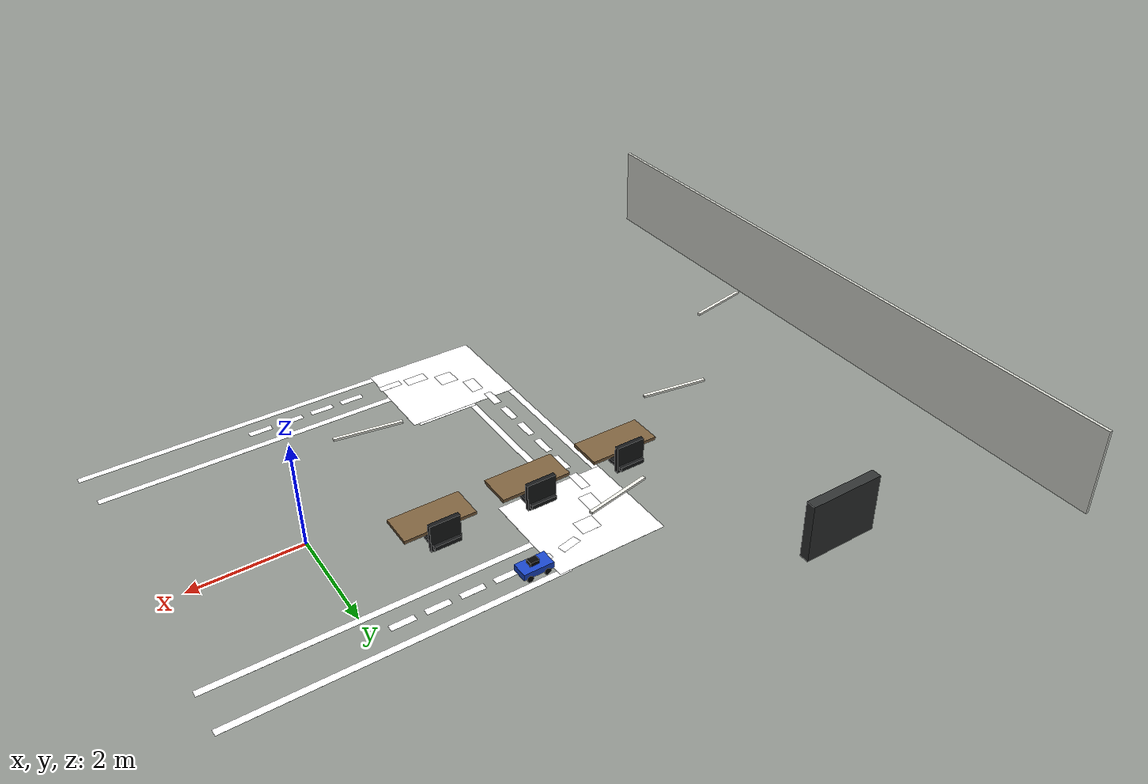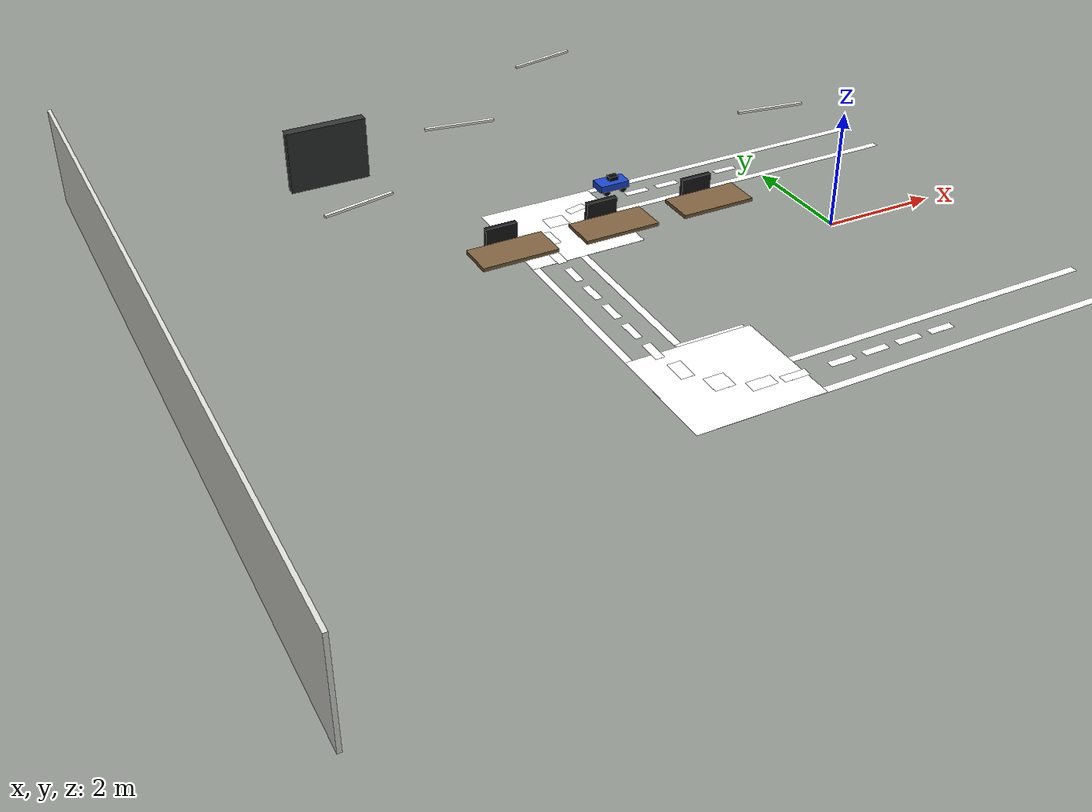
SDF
<sdf version="1.10">
 <world name="kookmin_xycar_track">
  <model name="white_line_cad_01">
   <static>true</static>
   <pose>-5.0048627853393555 -0.46876698732376099 0.014000000432133675 0 0 0</pose>
   <link name="white_line_cad_01_surface">
    <visual name="visual">
     <cast_shadows>false</cast_shadows>
     <geometry><plane><normal>0 0 1</normal><size>0.13 3.1200000000000001</size></plane></geometry>
     <material>
      <ambient>1 1 1 1</ambient>
      <diffuse>1 1 1 1</diffuse>
      <emissive>0.949000001 0.949000001 0.925499976 1</emissive>
      <pbr>
       <metal>
        <albedo_map>file://media/materials/textures/kookmin_white_line_cad_01.png</albedo_map>
        <roughness>1</roughness>
        <metalness>0</metalness>
       </metal>
      </pbr>
     </material>
    </visual>
    <inertial>
     <mass>1</mass>
     <inertia><ixx>1</ixx><ixy>0</ixy><ixz>0</ixz><iyy>1</iyy><iyz>0</iyz><izz>1</izz></inertia>
    </inertial>
   </link>
  </model>
  <model name="white_line_cad_02">
   <static>true</static>
   <pose>-4.1487832069396973 -0.43999999761581421 0.014200000092387199 0 0 0</pose>
   <link name="white_line_cad_02_surface">
    <visual name="visual">
     <cast_shadows>false</cast_shadows>
     <geometry><plane><normal>0 0 1</normal><size>0.13 3.1200000000000001</size></plane></geometry>
     <material>
      <ambient>1 1 1 1</ambient>
      <diffuse>1 1 1 1</diffuse>
      <emissive>0.949000001 0.949000001 0.925499976 1</emissive>
      <pbr>
       <metal>
        <albedo_map>file://media/materials/textures/kookmin_white_line_cad_02.png</albedo_map>
        <roughness>1</roughness>
        <metalness>0</metalness>
       </metal>
      </pbr>
     </material>
    </visual>
    <inertial>
     <mass>1</mass>
     <inertia><ixx>1</ixx><ixy>0</ixy><ixz>0</ixz><iyy>1</iyy><iyz>0</iyz><izz>1</izz></inertia>
    </inertial>
   </link>
  </model>
  <model name="white_line_cad_03">
   <static>true</static>
   <pose>-0.22653511166572571 -3.741569995880127 0.014399999752640724 0 0 0</pose>
   <link name="white_line_cad_03_surface">
    <visual name="visual">
     <cast_shadows>false</cast_shadows>
     <geometry><plane><normal>0 0 1</normal><size>5.7400000000000002 0.13</size></plane></geometry>
     <material>
      <ambient>1 1 1 1</ambient>
      <diffuse>1 1 1 1</diffuse>
      <emissive>0.949000001 0.949000001 0.925499976 1</emissive>
      <pbr>
       <metal>
        <albedo_map>file://media/materials/textures/kookmin_white_line_cad_03.png</albedo_map>
        <roughness>1</roughness>
        <metalness>0</metalness>
       </metal>
      </pbr>
     </material>
    </visual>
    <inertial>
     <mass>1</mass>
     <inertia><ixx>1</ixx><ixy>0</ixy><ixz>0</ixz><iyy>1</iyy><iyz>0</iyz><izz>1</izz></inertia>
    </inertial>
   </link>
  </model>
  <model name="white_line_cad_04">
   <static>true</static>
   <pose>-0.34999999999999998 -2.9350000000000001 0.0146 0 0 0</pose>
   <link name="white_line_cad_04_surface">
    <visual name="visual">
     <cast_shadows>false</cast_shadows>
     <geometry><plane><normal>0 0 1</normal><size>5.7400000000000002 0.13</size></plane></geometry>
     <material>
      <ambient>1 1 1 1</ambient>
      <diffuse>1 1 1 1</diffuse>
      <emissive>0.949000001 0.949000001 0.925499976 1</emissive>
      <pbr>
       <metal>
        <albedo_map>file://media/materials/textures/kookmin_white_line_cad_04.png</albedo_map>
        <roughness>1</roughness>
        <metalness>0</metalness>
       </metal>
      </pbr>
     </material>
    </visual>
    <inertial>
     <mass>1</mass>
     <inertia><ixx>1</ixx><ixy>0</ixy><ixz>0</ixz><iyy>1</iyy><iyz>0</iyz><izz>1</izz></inertia>
    </inertial>
   </link>
  </model>
  <model name="white_line_cad_05">
   <static>true</static>
   <pose>-0.34999999999999998 2.0550000000000002 0.014800000000000001 0 0 0</pose>
   <link name="white_line_cad_05_surface">
    <visual name="visual">
     <cast_shadows>false</cast_shadows>
     <geometry><plane><normal>0 0 1</normal><size>5.7800000000000002 0.13</size></plane></geometry>
     <material>
      <ambient>1 1 1 1</ambient>
      <diffuse>1 1 1 1</diffuse>
      <emissive>0.949000001 0.949000001 0.925499976 1</emissive>
      <pbr>
       <metal>
        <albedo_map>file://media/materials/textures/kookmin_white_line_cad_05.png</albedo_map>
        <roughness>1</roughness>
        <metalness>0</metalness>
       </metal>
      </pbr>
     </material>
    </visual>
    <inertial>
     <mass>1</mass>
     <inertia><ixx>1</ixx><ixy>0</ixy><ixz>0</ixz><iyy>1</iyy><iyz>0</iyz><izz>1</izz></inertia>
    </inertial>
   </link>
  </model>
  <model name="white_line_cad_06">
   <static>true</static>
   <pose>-0.34999999999999998 2.8650000000000002 0.014999999999999999 0 0 0</pose>
   <link name="white_line_cad_06_surface">
    <visual name="visual">
     <cast_shadows>false</cast_shadows>
     <geometry><plane><normal>0 0 1</normal><size>5.7800000000000002 0.13</size></plane></geometry>
     <material>
      <ambient>1 1 1 1</ambient>
      <diffuse>1 1 1 1</diffuse>
      <emissive>0.949000001 0.949000001 0.925499976 1</emissive>
      <pbr>
       <metal>
        <albedo_map>file://media/materials/textures/kookmin_white_line_cad_06.png</albedo_map>
        <roughness>1</roughness>
        <metalness>0</metalness>
       </metal>
      </pbr>
     </material>
    </visual>
    <inertial>
     <mass>1</mass>
     <inertia><ixx>1</ixx><ixy>0</ixy><ixz>0</ixz><iyy>1</iyy><iyz>0</iyz><izz>1</izz></inertia>
    </inertial>
   </link>
  </model>
  <model name="white_line_cad_18">
   <static>true</static>
   <pose>-3.6585278511047363 1.5645300149917603 0.017400000244379044 0 0 0</pose>
   <link name="white_line_cad_18_surface">
    <visual name="visual">
     <cast_shadows>false</cast_shadows>
     <geometry><plane><normal>0 0 1</normal><size>1.1399999999999999 1.1299999999999999</size></plane></geometry>
     <material>
      <ambient>1 1 1 1</ambient>
      <diffuse>1 1 1 1</diffuse>
      <emissive>0.949000001 0.949000001 0.925499976 1</emissive>
      <pbr>
       <metal>
        <albedo_map>file://media/materials/textures/kookmin_white_line_cad_18.png</albedo_map>
        <roughness>1</roughness>
        <metalness>0</metalness>
       </metal>
      </pbr>
     </material>
    </visual>
    <inertial>
     <mass>1</mass>
     <inertia><ixx>1</ixx><ixy>0</ixy><ixz>0</ixz><iyy>1</iyy><iyz>0</iyz><izz>1</izz></inertia>
    </inertial>
   </link>
  </model>
  <model name="white_line_cad_19">
   <static>true</static>
   <pose>-4.0487060546875 1.9379400014877319 0.017599999904632568 0 0 0</pose>
   <link name="white_line_cad_19_surface">
    <visual name="visual">
     <cast_shadows>false</cast_shadows>
     <geometry><plane><normal>0 0 1</normal><size>2.04 1.9299999999999999</size></plane></geometry>
     <material>
      <ambient>1 1 1 1</ambient>
      <diffuse>1 1 1 1</diffuse>
      <emissive>0.949000001 0.949000001 0.925499976 1</emissive>
      <pbr>
       <metal>
        <albedo_map>file://media/materials/textures/kookmin_white_line_cad_19.png</albedo_map>
        <roughness>1</roughness>
        <metalness>0</metalness>
       </metal>
      </pbr>
     </material>
    </visual>
    <inertial>
     <mass>1</mass>
     <inertia><ixx>1</ixx><ixy>0</ixy><ixz>0</ixz><iyy>1</iyy><iyz>0</iyz><izz>1</izz></inertia>
    </inertial>
   </link>
  </model>
  <model name="white_line_cad_20">
   <static>true</static>
   <pose>-3.6142799854278564 -2.4223885536193848 0.017799999564886093 0 0 0</pose>
   <link name="white_line_cad_20_surface">
    <visual name="visual">
     <cast_shadows>false</cast_shadows>
     <geometry><plane><normal>0 0 1</normal><size>1.1699999999999999 1.1299999999999999</size></plane></geometry>
     <material>
      <ambient>1 1 1 1</ambient>
      <diffuse>1 1 1 1</diffuse>
      <emissive>0.949000001 0.949000001 0.925499976 1</emissive>
      <pbr>
       <metal>
        <albedo_map>file://media/materials/textures/kookmin_white_line_cad_20.png</albedo_map>
        <roughness>1</roughness>
        <metalness>0</metalness>
       </metal>
      </pbr>
     </material>
    </visual>
    <inertial>
     <mass>1</mass>
     <inertia><ixx>1</ixx><ixy>0</ixy><ixz>0</ixz><iyy>1</iyy><iyz>0</iyz><izz>1</izz></inertia>
    </inertial>
   </link>
  </model>
  <model name="white_line_cad_21">
   <static>true</static>
   <pose>-3.9988181591033936 -2.8690700531005859 0.017999999225139618 0 0 0</pose>
   <link name="white_line_cad_21_surface">
    <visual name="visual">
     <cast_shadows>false</cast_shadows>
     <geometry><plane><normal>0 0 1</normal><size>2.1400000000000001 1.8999999999999999</size></plane></geometry>
     <material>
      <ambient>1 1 1 1</ambient>
      <diffuse>1 1 1 1</diffuse>
      <emissive>0.949000001 0.949000001 0.925499976 1</emissive>
      <pbr>
       <metal>
        <albedo_map>file://media/materials/textures/kookmin_white_line_cad_21.png</albedo_map>
        <roughness>1</roughness>
        <metalness>0</metalness>
       </metal>
      </pbr>
     </material>
    </visual>
    <inertial>
     <mass>1</mass>
     <inertia><ixx>1</ixx><ixy>0</ixy><ixz>0</ixz><iyy>1</iyy><iyz>0</iyz><izz>1</izz></inertia>
    </inertial>
   </link>
  </model>
  <model name="yellow_centerline_dash_001">
   <static>true</static>
   <pose>-2.3050000000000002 2.4649999999999999 0.026499999999999999 0 0 0</pose>
   <link name="yellow_centerline_dash_001_surface">
    <visual name="visual">
     <cast_shadows>false</cast_shadows>
     <geometry><plane><normal>0 0 1</normal><size>0.42999999999999999 0.13</size></plane></geometry>
     <material>
      <ambient>1 1 1 1</ambient>
      <diffuse>1 1 1 1</diffuse>
      <emissive>1 0.768599987 0.0471000001 1</emissive>
      <pbr>
       <metal>
        <albedo_map>file://media/materials/textures/kookmin_yellow_centerline_dash_001.png</albedo_map>
        <roughness>1</roughness>
        <metalness>0</metalness>
       </metal>
      </pbr>
     </material>
    </visual>
    <inertial>
     <mass>1</mass>
     <inertia><ixx>1</ixx><ixy>0</ixy><ixz>0</ixz><iyy>1</iyy><iyz>0</iyz><izz>1</izz></inertia>
    </inertial>
   </link>
  </model>
  <model name="yellow_centerline_dash_002">
   <static>true</static>
   <pose>-1.7050000000000001 2.4649999999999999 0.026700000000000002 0 0 0</pose>
   <link name="yellow_centerline_dash_002_surface">
    <visual name="visual">
     <cast_shadows>false</cast_shadows>
     <geometry><plane><normal>0 0 1</normal><size>0.42999999999999999 0.13</size></plane></geometry>
     <material>
      <ambient>1 1 1 1</ambient>
      <diffuse>1 1 1 1</diffuse>
      <emissive>1 0.768599987 0.0471000001 1</emissive>
      <pbr>
       <metal>
        <albedo_map>file://media/materials/textures/kookmin_yellow_centerline_dash_002.png</albedo_map>
        <roughness>1</roughness>
        <metalness>0</metalness>
       </metal>
      </pbr>
     </material>
    </visual>
    <inertial>
     <mass>1</mass>
     <inertia><ixx>1</ixx><ixy>0</ixy><ixz>0</ixz><iyy>1</iyy><iyz>0</iyz><izz>1</izz></inertia>
    </inertial>
   </link>
  </model>
  <model name="yellow_centerline_dash_003">
   <static>true</static>
   <pose>-1.105 2.4649999999999999 0.0269 0 0 0</pose>
   <link name="yellow_centerline_dash_003_surface">
    <visual name="visual">
     <cast_shadows>false</cast_shadows>
     <geometry><plane><normal>0 0 1</normal><size>0.42999999999999999 0.13</size></plane></geometry>
     <material>
      <ambient>1 1 1 1</ambient>
      <diffuse>1 1 1 1</diffuse>
      <emissive>1 0.768599987 0.0471000001 1</emissive>
      <pbr>
       <metal>
        <albedo_map>file://media/materials/textures/kookmin_yellow_centerline_dash_003.png</albedo_map>
        <roughness>1</roughness>
        <metalness>0</metalness>
       </metal>
      </pbr>
     </material>
    </visual>
    <inertial>
     <mass>1</mass>
     <inertia><ixx>1</ixx><ixy>0</ixy><ixz>0</ixz><iyy>1</iyy><iyz>0</iyz><izz>1</izz></inertia>
    </inertial>
   </link>
  </model>
  <model name="yellow_centerline_dash_004">
   <static>true</static>
   <pose>-0.505 2.4649999999999999 0.027099999999999999 0 0 0</pose>
   <link name="yellow_centerline_dash_004_surface">
    <visual name="visual">
     <cast_shadows>false</cast_shadows>
     <geometry><plane><normal>0 0 1</normal><size>0.42999999999999999 0.13</size></plane></geometry>
     <material>
      <ambient>1 1 1 1</ambient>
      <diffuse>1 1 1 1</diffuse>
      <emissive>1 0.768599987 0.0471000001 1</emissive>
      <pbr>
       <metal>
        <albedo_map>file://media/materials/textures/kookmin_yellow_centerline_dash_004.png</albedo_map>
        <roughness>1</roughness>
        <metalness>0</metalness>
       </metal>
      </pbr>
     </material>
    </visual>
    <inertial>
     <mass>1</mass>
     <inertia><ixx>1</ixx><ixy>0</ixy><ixz>0</ixz><iyy>1</iyy><iyz>0</iyz><izz>1</izz></inertia>
    </inertial>
   </link>
  </model>
  <model name="yellow_centerline_dash_009">
   <static>true</static>
   <pose>-2.928236722946167 2.4549999237060547 0.028100000694394112 0 0 0</pose>
   <link name="yellow_centerline_dash_009_surface">
    <visual name="visual">
     <cast_shadows>false</cast_shadows>
     <geometry><plane><normal>0 0 1</normal><size>0.42999999999999999 0.13</size></plane></geometry>
     <material>
      <ambient>1 1 1 1</ambient>
      <diffuse>1 1 1 1</diffuse>
      <emissive>1 0.768599987 0.0471000001 1</emissive>
      <pbr>
       <metal>
        <albedo_map>file://media/materials/textures/kookmin_yellow_centerline_dash_009.png</albedo_map>
        <roughness>1</roughness>
        <metalness>0</metalness>
       </metal>
      </pbr>
     </material>
    </visual>
    <inertial>
     <mass>1</mass>
     <inertia><ixx>1</ixx><ixy>0</ixy><ixz>0</ixz><iyy>1</iyy><iyz>0</iyz><izz>1</izz></inertia>
    </inertial>
   </link>
  </model>
  <model name="yellow_centerline_dash_011">
   <static>true</static>
   <pose>-3.5250000953674316 2.4000000953674316 0.028500000014901161 0 0 0.22944573427692086</pose>
   <link name="yellow_centerline_dash_011_surface">
    <visual name="visual">
     <cast_shadows>false</cast_shadows>
     <geometry><plane><normal>0 0 1</normal><size>0.37 0.16</size></plane></geometry>
     <material>
      <ambient>1 1 1 1</ambient>
      <diffuse>1 1 1 1</diffuse>
      <emissive>1 0.768599987 0.0471000001 1</emissive>
      <pbr>
       <metal>
        <albedo_map>file://media/materials/textures/kookmin_yellow_centerline_dash_011.png</albedo_map>
        <roughness>1</roughness>
        <metalness>0</metalness>
       </metal>
      </pbr>
     </material>
    </visual>
    <inertial>
     <mass>1</mass>
     <inertia><ixx>1</ixx><ixy>0</ixy><ixz>0</ixz><iyy>1</iyy><iyz>0</iyz><izz>1</izz></inertia>
    </inertial>
   </link>
  </model>
  <model name="yellow_centerline_dash_013">
   <static>true</static>
   <pose>-4.0350000000000001 2.165 0.028899999999999999 0 0 0</pose>
   <link name="yellow_centerline_dash_013_surface">
    <visual name="visual">
     <cast_shadows>false</cast_shadows>
     <geometry><plane><normal>0 0 1</normal><size>0.37 0.31</size></plane></geometry>
     <material>
      <ambient>1 1 1 1</ambient>
      <diffuse>1 1 1 1</diffuse>
      <emissive>1 0.768599987 0.0471000001 1</emissive>
      <pbr>
       <metal>
        <albedo_map>file://media/materials/textures/kookmin_yellow_centerline_dash_013.png</albedo_map>
        <roughness>1</roughness>
        <metalness>0</metalness>
       </metal>
      </pbr>
     </material>
    </visual>
    <inertial>
     <mass>1</mass>
     <inertia><ixx>1</ixx><ixy>0</ixy><ixz>0</ixz><iyy>1</iyy><iyz>0</iyz><izz>1</izz></inertia>
    </inertial>
   </link>
  </model>
  <model name="yellow_centerline_dash_014">
   <static>true</static>
   <pose>-4.4100000000000001 1.71 0.029100000000000001 0 0 0</pose>
   <link name="yellow_centerline_dash_014_surface">
    <visual name="visual">
     <cast_shadows>false</cast_shadows>
     <geometry><plane><normal>0 0 1</normal><size>0.26000000000000001 0.40000000000000002</size></plane></geometry>
     <material>
      <ambient>1 1 1 1</ambient>
      <diffuse>1 1 1 1</diffuse>
      <emissive>1 0.768599987 0.0471000001 1</emissive>
      <pbr>
       <metal>
        <albedo_map>file://media/materials/textures/kookmin_yellow_centerline_dash_014.png</albedo_map>
        <roughness>1</roughness>
        <metalness>0</metalness>
       </metal>
      </pbr>
     </material>
    </visual>
    <inertial>
     <mass>1</mass>
     <inertia><ixx>1</ixx><ixy>0</ixy><ixz>0</ixz><iyy>1</iyy><iyz>0</iyz><izz>1</izz></inertia>
    </inertial>
   </link>
  </model>
  <model name="yellow_centerline_dash_016">
   <static>true</static>
   <pose>-4.5549999999999997 1.135 0.029499999999999998 0 0 0</pose>
   <link name="yellow_centerline_dash_016_surface">
    <visual name="visual">
     <cast_shadows>false</cast_shadows>
     <geometry><plane><normal>0 0 1</normal><size>0.17000000000000001 0.42999999999999999</size></plane></geometry>
     <material>
      <ambient>1 1 1 1</ambient>
      <diffuse>1 1 1 1</diffuse>
      <emissive>1 0.768599987 0.0471000001 1</emissive>
      <pbr>
       <metal>
        <albedo_map>file://media/materials/textures/kookmin_yellow_centerline_dash_016.png</albedo_map>
        <roughness>1</roughness>
        <metalness>0</metalness>
       </metal>
      </pbr>
     </material>
    </visual>
    <inertial>
     <mass>1</mass>
     <inertia><ixx>1</ixx><ixy>0</ixy><ixz>0</ixz><iyy>1</iyy><iyz>0</iyz><izz>1</izz></inertia>
    </inertial>
   </link>
  </model>
  <model name="yellow_centerline_dash_019">
   <static>true</static>
   <pose>-4.5750000000000002 0.53000000000000003 0.030099999999999998 0 0 0</pose>
   <link name="yellow_centerline_dash_019_surface">
    <visual name="visual">
     <cast_shadows>false</cast_shadows>
     <geometry><plane><normal>0 0 1</normal><size>0.13 0.41999999999999998</size></plane></geometry>
     <material>
      <ambient>1 1 1 1</ambient>
      <diffuse>1 1 1 1</diffuse>
      <emissive>1 0.768599987 0.0471000001 1</emissive>
      <pbr>
       <metal>
        <albedo_map>file://media/materials/textures/kookmin_yellow_centerline_dash_019.png</albedo_map>
        <roughness>1</roughness>
        <metalness>0</metalness>
       </metal>
      </pbr>
     </material>
    </visual>
    <inertial>
     <mass>1</mass>
     <inertia><ixx>1</ixx><ixy>0</ixy><ixz>0</ixz><iyy>1</iyy><iyz>0</iyz><izz>1</izz></inertia>
    </inertial>
   </link>
  </model>
  <model name="yellow_centerline_dash_021">
   <static>true</static>
   <pose>-4.5750000000000002 -0.070000000000000007 0.030499999999999999 0 0 0</pose>
   <link name="yellow_centerline_dash_021_surface">
    <visual name="visual">
     <cast_shadows>false</cast_shadows>
     <geometry><plane><normal>0 0 1</normal><size>0.13 0.41999999999999998</size></plane></geometry>
     <material>
      <ambient>1 1 1 1</ambient>
      <diffuse>1 1 1 1</diffuse>
      <emissive>1 0.768599987 0.0471000001 1</emissive>
      <pbr>
       <metal>
        <albedo_map>file://media/materials/textures/kookmin_yellow_centerline_dash_021.png</albedo_map>
        <roughness>1</roughness>
        <metalness>0</metalness>
       </metal>
      </pbr>
     </material>
    </visual>
    <inertial>
     <mass>1</mass>
     <inertia><ixx>1</ixx><ixy>0</ixy><ixz>0</ixz><iyy>1</iyy><iyz>0</iyz><izz>1</izz></inertia>
    </inertial>
   </link>
  </model>
  <model name="yellow_centerline_dash_023">
   <static>true</static>
   <pose>-4.5750000000000002 -0.67000000000000004 0.0309 0 0 0</pose>
   <link name="yellow_centerline_dash_023_surface">
    <visual name="visual">
     <cast_shadows>false</cast_shadows>
     <geometry><plane><normal>0 0 1</normal><size>0.13 0.41999999999999998</size></plane></geometry>
     <material>
      <ambient>1 1 1 1</ambient>
      <diffuse>1 1 1 1</diffuse>
      <emissive>1 0.768599987 0.0471000001 1</emissive>
      <pbr>
       <metal>
        <albedo_map>file://media/materials/textures/kookmin_yellow_centerline_dash_023.png</albedo_map>
        <roughness>1</roughness>
        <metalness>0</metalness>
       </metal>
      </pbr>
     </material>
    </visual>
    <inertial>
     <mass>1</mass>
     <inertia><ixx>1</ixx><ixy>0</ixy><ixz>0</ixz><iyy>1</iyy><iyz>0</iyz><izz>1</izz></inertia>
    </inertial>
   </link>
  </model>
  <model name="yellow_centerline_dash_025">
   <static>true</static>
   <pose>-4.5750000000000002 -1.27 0.031300000000000001 0 0 0</pose>
   <link name="yellow_centerline_dash_025_surface">
    <visual name="visual">
     <cast_shadows>false</cast_shadows>
     <geometry><plane><normal>0 0 1</normal><size>0.13 0.41999999999999998</size></plane></geometry>
     <material>
      <ambient>1 1 1 1</ambient>
      <diffuse>1 1 1 1</diffuse>
      <emissive>1 0.768599987 0.0471000001 1</emissive>
      <pbr>
       <metal>
        <albedo_map>file://media/materials/textures/kookmin_yellow_centerline_dash_025.png</albedo_map>
        <roughness>1</roughness>
        <metalness>0</metalness>
       </metal>
      </pbr>
     </material>
    </visual>
    <inertial>
     <mass>1</mass>
     <inertia><ixx>1</ixx><ixy>0</ixy><ixz>0</ixz><iyy>1</iyy><iyz>0</iyz><izz>1</izz></inertia>
    </inertial>
   </link>
  </model>
  <model name="yellow_centerline_dash_028">
   <static>true</static>
   <pose>-4.5650000000000004 -1.865 0.031899999999999998 0 0 0</pose>
   <link name="yellow_centerline_dash_028_surface">
    <visual name="visual">
     <cast_shadows>false</cast_shadows>
     <geometry><plane><normal>0 0 1</normal><size>0.14999999999999999 0.40999999999999998</size></plane></geometry>
     <material>
      <ambient>1 1 1 1</ambient>
      <diffuse>1 1 1 1</diffuse>
      <emissive>1 0.768599987 0.0471000001 1</emissive>
      <pbr>
       <metal>
        <albedo_map>file://media/materials/textures/kookmin_yellow_centerline_dash_028.png</albedo_map>
        <roughness>1</roughness>
        <metalness>0</metalness>
       </metal>
      </pbr>
     </material>
    </visual>
    <inertial>
     <mass>1</mass>
     <inertia><ixx>1</ixx><ixy>0</ixy><ixz>0</ixz><iyy>1</iyy><iyz>0</iyz><izz>1</izz></inertia>
    </inertial>
   </link>
  </model>
  <model name="yellow_centerline_dash_030">
   <static>true</static>
   <pose>-4.4649999999999999 -2.4500000000000002 0.032300000000000002 0 0 0</pose>
   <link name="yellow_centerline_dash_030_surface">
    <visual name="visual">
     <cast_shadows>false</cast_shadows>
     <geometry><plane><normal>0 0 1</normal><size>0.23000000000000001 0.40000000000000002</size></plane></geometry>
     <material>
      <ambient>1 1 1 1</ambient>
      <diffuse>1 1 1 1</diffuse>
      <emissive>1 0.768599987 0.0471000001 1</emissive>
      <pbr>
       <metal>
        <albedo_map>file://media/materials/textures/kookmin_yellow_centerline_dash_030.png</albedo_map>
        <roughness>1</roughness>
        <metalness>0</metalness>
       </metal>
      </pbr>
     </material>
    </visual>
    <inertial>
     <mass>1</mass>
     <inertia><ixx>1</ixx><ixy>0</ixy><ixz>0</ixz><iyy>1</iyy><iyz>0</iyz><izz>1</izz></inertia>
    </inertial>
   </link>
  </model>
  <model name="yellow_centerline_dash_032">
   <static>true</static>
   <pose>-4.1399999999999997 -2.9449999999999998 0.0327 0 0 0</pose>
   <link name="yellow_centerline_dash_032_surface">
    <visual name="visual">
     <cast_shadows>false</cast_shadows>
     <geometry><plane><normal>0 0 1</normal><size>0.34000000000000002 0.33000000000000002</size></plane></geometry>
     <material>
      <ambient>1 1 1 1</ambient>
      <diffuse>1 1 1 1</diffuse>
      <emissive>1 0.768599987 0.0471000001 1</emissive>
      <pbr>
       <metal>
        <albedo_map>file://media/materials/textures/kookmin_yellow_centerline_dash_032.png</albedo_map>
        <roughness>1</roughness>
        <metalness>0</metalness>
       </metal>
      </pbr>
     </material>
    </visual>
    <inertial>
     <mass>1</mass>
     <inertia><ixx>1</ixx><ixy>0</ixy><ixz>0</ixz><iyy>1</iyy><iyz>0</iyz><izz>1</izz></inertia>
    </inertial>
   </link>
  </model>
  <model name="yellow_centerline_dash_033">
   <static>true</static>
   <pose>-3.6299999999999999 -3.2400000000000002 0.032899999999999999 0 0 0</pose>
   <link name="yellow_centerline_dash_033_surface">
    <visual name="visual">
     <cast_shadows>false</cast_shadows>
     <geometry><plane><normal>0 0 1</normal><size>0.41999999999999998 0.22</size></plane></geometry>
     <material>
      <ambient>1 1 1 1</ambient>
      <diffuse>1 1 1 1</diffuse>
      <emissive>1 0.768599987 0.0471000001 1</emissive>
      <pbr>
       <metal>
        <albedo_map>file://media/materials/textures/kookmin_yellow_centerline_dash_033.png</albedo_map>
        <roughness>1</roughness>
        <metalness>0</metalness>
       </metal>
      </pbr>
     </material>
    </visual>
    <inertial>
     <mass>1</mass>
     <inertia><ixx>1</ixx><ixy>0</ixy><ixz>0</ixz><iyy>1</iyy><iyz>0</iyz><izz>1</izz></inertia>
    </inertial>
   </link>
  </model>
  <model name="yellow_centerline_dash_035">
   <static>true</static>
   <pose>-3.1150000000000002 -3.3050000000000002 0.033300000000000003 0 0 0</pose>
   <link name="yellow_centerline_dash_035_surface">
    <visual name="visual">
     <cast_shadows>false</cast_shadows>
     <geometry><plane><normal>0 0 1</normal><size>0.42999999999999999 0.14999999999999999</size></plane></geometry>
     <material>
      <ambient>1 1 1 1</ambient>
      <diffuse>1 1 1 1</diffuse>
      <emissive>1 0.768599987 0.0471000001 1</emissive>
      <pbr>
       <metal>
        <albedo_map>file://media/materials/textures/kookmin_yellow_centerline_dash_035.png</albedo_map>
        <roughness>1</roughness>
        <metalness>0</metalness>
       </metal>
      </pbr>
     </material>
    </visual>
    <inertial>
     <mass>1</mass>
     <inertia><ixx>1</ixx><ixy>0</ixy><ixz>0</ixz><iyy>1</iyy><iyz>0</iyz><izz>1</izz></inertia>
    </inertial>
   </link>
  </model>
  <model name="yellow_centerline_dash_036">
   <static>true</static>
   <pose>-2.3050000000000002 -3.3149999999999999 0.033500000000000002 0 0 0</pose>
   <link name="yellow_centerline_dash_036_surface">
    <visual name="visual">
     <cast_shadows>false</cast_shadows>
     <geometry><plane><normal>0 0 1</normal><size>0.42999999999999999 0.13</size></plane></geometry>
     <material>
      <ambient>1 1 1 1</ambient>
      <diffuse>1 1 1 1</diffuse>
      <emissive>1 0.768599987 0.0471000001 1</emissive>
      <pbr>
       <metal>
        <albedo_map>file://media/materials/textures/kookmin_yellow_centerline_dash_036.png</albedo_map>
        <roughness>1</roughness>
        <metalness>0</metalness>
       </metal>
      </pbr>
     </material>
    </visual>
    <inertial>
     <mass>1</mass>
     <inertia><ixx>1</ixx><ixy>0</ixy><ixz>0</ixz><iyy>1</iyy><iyz>0</iyz><izz>1</izz></inertia>
    </inertial>
   </link>
  </model>
  <model name="yellow_centerline_dash_037">
   <static>true</static>
   <pose>-1.7050000000000001 -3.3149999999999999 0.033700000000000001 0 0 0</pose>
   <link name="yellow_centerline_dash_037_surface">
    <visual name="visual">
     <cast_shadows>false</cast_shadows>
     <geometry><plane><normal>0 0 1</normal><size>0.42999999999999999 0.13</size></plane></geometry>
     <material>
      <ambient>1 1 1 1</ambient>
      <diffuse>1 1 1 1</diffuse>
      <emissive>1 0.768599987 0.0471000001 1</emissive>
      <pbr>
       <metal>
        <albedo_map>file://media/materials/textures/kookmin_yellow_centerline_dash_037.png</albedo_map>
        <roughness>1</roughness>
        <metalness>0</metalness>
       </metal>
      </pbr>
     </material>
    </visual>
    <inertial>
     <mass>1</mass>
     <inertia><ixx>1</ixx><ixy>0</ixy><ixz>0</ixz><iyy>1</iyy><iyz>0</iyz><izz>1</izz></inertia>
    </inertial>
   </link>
  </model>
  <model name="yellow_centerline_dash_038">
   <static>true</static>
   <pose>-1.105 -3.3149999999999999 0.0339 0 0 0</pose>
   <link name="yellow_centerline_dash_038_surface">
    <visual name="visual">
     <cast_shadows>false</cast_shadows>
     <geometry><plane><normal>0 0 1</normal><size>0.42999999999999999 0.13</size></plane></geometry>
     <material>
      <ambient>1 1 1 1</ambient>
      <diffuse>1 1 1 1</diffuse>
      <emissive>1 0.768599987 0.0471000001 1</emissive>
      <pbr>
       <metal>
        <albedo_map>file://media/materials/textures/kookmin_yellow_centerline_dash_038.png</albedo_map>
        <roughness>1</roughness>
        <metalness>0</metalness>
       </metal>
      </pbr>
     </material>
    </visual>
    <inertial>
     <mass>1</mass>
     <inertia><ixx>1</ixx><ixy>0</ixy><ixz>0</ixz><iyy>1</iyy><iyz>0</iyz><izz>1</izz></inertia>
    </inertial>
   </link>
  </model>
  <model name="yellow_centerline_dash_039">
   <static>true</static>
   <pose>-0.505 -3.3149999999999999 0.034099999999999998 0 0 0</pose>
   <link name="yellow_centerline_dash_039_surface">
    <visual name="visual">
     <cast_shadows>false</cast_shadows>
     <geometry><plane><normal>0 0 1</normal><size>0.42999999999999999 0.13</size></plane></geometry>
     <material>
      <ambient>1 1 1 1</ambient>
      <diffuse>1 1 1 1</diffuse>
      <emissive>1 0.768599987 0.0471000001 1</emissive>
      <pbr>
       <metal>
        <albedo_map>file://media/materials/textures/kookmin_yellow_centerline_dash_039.png</albedo_map>
        <roughness>1</roughness>
        <metalness>0</metalness>
       </metal>
      </pbr>
     </material>
    </visual>
    <inertial>
     <mass>1</mass>
     <inertia><ixx>1</ixx><ixy>0</ixy><ixz>0</ixz><iyy>1</iyy><iyz>0</iyz><izz>1</izz></inertia>
    </inertial>
   </link>
  </model>
  <model name="room_west_wall">
   <static>true</static>
   <pose>-11.1000 0.0000 0.9000 0.000000 0.000000 0.000000</pose>
   <link name="west_wall">
    <visual name="visual">
     <geometry><box><size>0.0600 13.2000 1.7000</size></box></geometry>
     <material><ambient>0.8627 0.8706 0.8392 1</ambient><diffuse>0.8627 0.8706 0.8392 1</diffuse></material>
    </visual>
   </link>
  </model>
  <model name="room_black_display_stand">
   <static>true</static>
   <pose>-7.0000 4.9000 0.7500 0.000000 0.000000 0.000000</pose>
   <link name="black_display_stand">
    <visual name="visual">
     <geometry><box><size>1.4000 0.1800 1.1000</size></box></geometry>
     <material><ambient>0.1882 0.1961 0.1961 1</ambient><diffuse>0.1882 0.1961 0.1961 1</diffuse></material>
    </visual>
   </link>
  </model>
  <model name="room_table_top_0">
   <static>true</static>
   <pose>-5.4000 1.0000 0.4300 0.000000 0.000000 0.000000</pose>
   <link name="table_top_0">
    <visual name="visual">
     <geometry><box><size>1.3000 0.6200 0.0600</size></box></geometry>
     <material><ambient>0.4941 0.3843 0.2471 1</ambient><diffuse>0.4941 0.3843 0.2471 1</diffuse></material>
    </visual>
   </link>
  </model>
  <model name="room_chair_back_0">
   <static>true</static>
   <pose>-5.4000 1.4300 0.4200 0.000000 0.000000 0.000000</pose>
   <link name="chair_back_0">
    <visual name="visual">
     <geometry><box><size>0.5500 0.0800 0.5200</size></box></geometry>
     <material><ambient>0.0941 0.0980 0.1020 1</ambient><diffuse>0.0941 0.0980 0.1020 1</diffuse></material>
    </visual>
   </link>
  </model>
  <model name="room_chair_seat_0">
   <static>true</static>
   <pose>-5.4000 1.3400 0.2600 0.000000 0.000000 0.000000</pose>
   <link name="chair_seat_0">
    <visual name="visual">
     <geometry><box><size>0.4800 0.4000 0.0800</size></box></geometry>
     <material><ambient>0.0941 0.0980 0.1020 1</ambient><diffuse>0.0941 0.0980 0.1020 1</diffuse></material>
    </visual>
   </link>
  </model>
  <model name="room_table_top_1">
   <static>true</static>
   <pose>-3.6000 1.0000 0.4300 0.000000 0.000000 0.000000</pose>
   <link name="table_top_1">
    <visual name="visual">
     <geometry><box><size>1.3000 0.6200 0.0600</size></box></geometry>
     <material><ambient>0.4941 0.3843 0.2471 1</ambient><diffuse>0.4941 0.3843 0.2471 1</diffuse></material>
    </visual>
   </link>
  </model>
  <model name="room_chair_back_1">
   <static>true</static>
   <pose>-3.6000 1.4300 0.4200 0.000000 0.000000 0.000000</pose>
   <link name="chair_back_1">
    <visual name="visual">
     <geometry><box><size>0.5500 0.0800 0.5200</size></box></geometry>
     <material><ambient>0.0941 0.0980 0.1020 1</ambient><diffuse>0.0941 0.0980 0.1020 1</diffuse></material>
    </visual>
   </link>
  </model>
  <model name="room_chair_seat_1">
   <static>true</static>
   <pose>-3.6000 1.3400 0.2600 0.000000 0.000000 0.000000</pose>
   <link name="chair_seat_1">
    <visual name="visual">
     <geometry><box><size>0.4800 0.4000 0.0800</size></box></geometry>
     <material><ambient>0.0941 0.0980 0.1020 1</ambient><diffuse>0.0941 0.0980 0.1020 1</diffuse></material>
    </visual>
   </link>
  </model>
  <model name="room_table_top_2">
   <static>true</static>
   <pose>-1.8000 1.0000 0.4300 0.000000 0.000000 0.000000</pose>
   <link name="table_top_2">
    <visual name="visual">
     <geometry><box><size>1.3000 0.6200 0.0600</size></box></geometry>
     <material><ambient>0.4941 0.3843 0.2471 1</ambient><diffuse>0.4941 0.3843 0.2471 1</diffuse></material>
    </visual>
   </link>
  </model>
  <model name="room_chair_back_2">
   <static>true</static>
   <pose>-1.8000 1.4300 0.4200 0.000000 0.000000 0.000000</pose>
   <link name="chair_back_2">
    <visual name="visual">
     <geometry><box><size>0.5500 0.0800 0.5200</size></box></geometry>
     <material><ambient>0.0941 0.0980 0.1020 1</ambient><diffuse>0.0941 0.0980 0.1020 1</diffuse></material>
    </visual>
   </link>
  </model>
  <model name="room_chair_seat_2">
   <static>true</static>
   <pose>-1.8000 1.3400 0.2600 0.000000 0.000000 0.000000</pose>
   <link name="chair_seat_2">
    <visual name="visual">
     <geometry><box><size>0.4800 0.4000 0.0800</size></box></geometry>
     <material><ambient>0.0941 0.0980 0.1020 1</ambient><diffuse>0.0941 0.0980 0.1020 1</diffuse></material>
    </visual>
   </link>
  </model>
  <model name="room_ceiling_light_0">
   <static>true</static>
   <pose>-8.0000 0.5000 2.1500 0.000000 0.000000 0.200000</pose>
   <link name="ceiling_light_0">
    <visual name="visual">
     <geometry><box><size>1.1000 0.0550 0.0350</size></box></geometry>
     <material><ambient>0.9608 0.9608 0.9216 1</ambient><diffuse>0.9608 0.9608 0.9216 1</diffuse></material>
    </visual>
   </link>
  </model>
  <model name="room_ceiling_light_1">
   <static>true</static>
   <pose>-5.7000 2.2000 2.1500 0.000000 0.000000 -0.150000</pose>
   <link name="ceiling_light_1">
    <visual name="visual">
     <geometry><box><size>1.1000 0.0550 0.0350</size></box></geometry>
     <material><ambient>0.9608 0.9608 0.9216 1</ambient><diffuse>0.9608 0.9608 0.9216 1</diffuse></material>
    </visual>
   </link>
  </model>
  <model name="room_ceiling_light_2">
   <static>true</static>
   <pose>-3.4000 3.9000 2.1500 0.000000 0.000000 0.200000</pose>
   <link name="ceiling_light_2">
    <visual name="visual">
     <geometry><box><size>1.1000 0.0550 0.0350</size></box></geometry>
     <material><ambient>0.9608 0.9608 0.9216 1</ambient><diffuse>0.9608 0.9608 0.9216 1</diffuse></material>
    </visual>
   </link>
  </model>
  <model name="room_ceiling_light_3">
   <static>true</static>
   <pose>-1.1000 0.5000 2.1500 0.000000 0.000000 -0.150000</pose>
   <link name="ceiling_light_3">
    <visual name="visual">
     <geometry><box><size>1.1000 0.0550 0.0350</size></box></geometry>
     <material><ambient>0.9608 0.9608 0.9216 1</ambient><diffuse>0.9608 0.9608 0.9216 1</diffuse></material>
    </visual>
   </link>
  </model>
  <model name="xycar_ackermann">
   <pose>-2.7000 2.6650 0.0500 0 0 3.1416</pose>
   <link name="chassis">
    <pose>0 0 0.13500000000000001 0 0 0</pose>
    <inertial>
     <mass>2.2</mass>
     <inertia><ixx>0.055</ixx><ixy>0</ixy><ixz>0</ixz><iyy>0.13</iyy><iyz>0</iyz><izz>0.16</izz></inertia>
    </inertial>
    <collision name="collision"><geometry><box><size>0.55 0.30 0.12</size></box></geometry></collision>
    <visual name="body">
     <visibility_flags>2</visibility_flags>
     <geometry><box><size>0.55 0.30 0.12</size></box></geometry>
     <material>
      <ambient>0.100000001 0.280000001 0.800000012 1</ambient>
      <diffuse>0.100000001 0.280000001 0.800000012 1</diffuse>
     </material>
    </visual>
    <visual name="mini_pc_body">
     <visibility_flags>2</visibility_flags>
     <pose>-0.02 0 0.115 0 0 0</pose>
     <geometry><box><size>0.17 0.13 0.07</size></box></geometry>
     <material><ambient>0.02 0.02 0.02 1</ambient><diffuse>0.02 0.02 0.02 1</diffuse></material>
    </visual>
    <visual name="lidar_body">
     <pose>0.225 0 -0.0125 0 0 0</pose>
     <geometry><cylinder><length>0.035</length><radius>0.04</radius></cylinder></geometry>
     <material><ambient>0.01 0.01 0.01 1</ambient><diffuse>0.01 0.01 0.01 1</diffuse></material>
    </visual>
    <sensor name="front_camera" type="camera">
     <pose>0.120 0 0.095 0 0.1870 0</pose>
     <topic>/image_raw</topic>
     <update_rate>14</update_rate>
     <camera>
      <camera_info_topic>/camera_info</camera_info_topic>
      <horizontal_fov>1.7032</horizontal_fov>
      <image><width>320</width><height>256</height><format>R8G8B8</format></image>
      <clip><near>0.03</near><far>20</far></clip>
      <visibility_mask>4294967293</visibility_mask>
      <lens>
       <type>gnomonical</type>
       <scale_to_hfov>true</scale_to_hfov>
       <cutoff_angle>1.5707963267948966</cutoff_angle>
       <env_texture_size>512</env_texture_size>
      </lens>
     </camera>
     <always_on>true</always_on>
     <visualize>false</visualize>
    </sensor>
    <sensor name="lidar" type="gpu_lidar">
     <pose>0.225 0 0.005 0 0 0</pose>
     <topic>/scan</topic>
     <update_rate>10</update_rate>
     <ray>
      <scan>
       <horizontal>
        <samples>505</samples>
        <resolution>1</resolution>
        <min_angle>-3.14159</min_angle>
        <max_angle>3.14159</max_angle>
       </horizontal>
      </scan>
      <range><min>0.10</min><max>12.0</max><resolution>0.01</resolution></range>
     </ray>
     <always_on>true</always_on>
     <visualize>false</visualize>
    </sensor>
   </link>
   <link name="front_left_wheel_steering_link">
    <pose>0.16000000000000014 0.1200 0.059999999999999998 0 0 0</pose>
    <inertial>
     <mass>0.080000000000000002</mass>
     <inertia>
      <ixx>0.00020000000000000001</ixx>
      <iyy>0.00020000000000000001</iyy>
      <izz>0.00020000000000000001</izz>
      <ixy>0</ixy>
      <ixz>0</ixz>
      <iyz>0</iyz>
     </inertia>
    </inertial>
   </link>
   <link name="front_right_wheel_steering_link">
    <pose>0.16000000000000014 -0.1200 0.059999999999999998 0 0 0</pose>
    <inertial>
     <mass>0.080000000000000002</mass>
     <inertia>
      <ixx>0.00020000000000000001</ixx>
      <iyy>0.00020000000000000001</iyy>
      <izz>0.00020000000000000001</izz>
      <ixy>0</ixy>
      <ixz>0</ixz>
      <iyz>0</iyz>
     </inertia>
    </inertial>
   </link>
   <link name="front_left_wheel">
    <pose>0.16000000000000014 0.1325 0.059999999999999998 -1.5706999999999995 0 0</pose>
    <inertial>
     <mass>0.12</mass>
     <inertia>
      <ixx>0.00040000000000000002</ixx>
      <iyy>0.00040000000000000002</iyy>
      <izz>0.00025000000000000001</izz>
      <ixy>0</ixy>
      <ixz>0</ixz>
      <iyz>0</iyz>
     </inertia>
    </inertial>
    <collision name="collision">
     <geometry>
      <cylinder><length>0.035000000000000003</length><radius>0.059999999999999998</radius></cylinder>
     </geometry>
    </collision>
    <visual name="visual">
     <visibility_flags>2</visibility_flags>
     <geometry>
      <cylinder><length>0.035000000000000003</length><radius>0.059999999999999998</radius></cylinder>
     </geometry>
     <material>
      <ambient>0.0299999993 0.0299999993 0.0299999993 1</ambient>
      <diffuse>0.0299999993 0.0299999993 0.0299999993 1</diffuse>
     </material>
    </visual>
   </link>
   <link name="front_right_wheel">
    <pose>0.16000000000000014 -0.1325 0.059999999999999998 -1.5706999999999995 0 0</pose>
    <inertial>
     <mass>0.12</mass>
     <inertia>
      <ixx>0.00040000000000000002</ixx>
      <iyy>0.00040000000000000002</iyy>
      <izz>0.00025000000000000001</izz>
      <ixy>0</ixy>
      <ixz>0</ixz>
      <iyz>0</iyz>
     </inertia>
    </inertial>
    <collision name="collision">
     <geometry>
      <cylinder><length>0.035000000000000003</length><radius>0.059999999999999998</radius></cylinder>
     </geometry>
    </collision>
    <visual name="visual">
     <visibility_flags>2</visibility_flags>
     <geometry>
      <cylinder><length>0.035000000000000003</length><radius>0.059999999999999998</radius></cylinder>
     </geometry>
     <material>
      <ambient>0.0299999993 0.0299999993 0.0299999993 1</ambient>
      <diffuse>0.0299999993 0.0299999993 0.0299999993 1</diffuse>
     </material>
    </visual>
   </link>
   <link name="rear_left_wheel">
    <pose>-0.16000000000000014 0.1325 0.059999999999999998 -1.5706999999999995 0 0</pose>
    <inertial>
     <mass>0.12</mass>
     <inertia>
      <ixx>0.00040000000000000002</ixx>
      <iyy>0.00040000000000000002</iyy>
      <izz>0.00025000000000000001</izz>
      <ixy>0</ixy>
      <ixz>0</ixz>
      <iyz>0</iyz>
     </inertia>
    </inertial>
    <collision name="collision">
     <geometry>
      <cylinder><length>0.035000000000000003</length><radius>0.059999999999999998</radius></cylinder>
     </geometry>
    </collision>
    <visual name="visual">
     <visibility_flags>2</visibility_flags>
     <geometry>
      <cylinder><length>0.035000000000000003</length><radius>0.059999999999999998</radius></cylinder>
     </geometry>
     <material>
      <ambient>0.0299999993 0.0299999993 0.0299999993 1</ambient>
      <diffuse>0.0299999993 0.0299999993 0.0299999993 1</diffuse>
     </material>
    </visual>
   </link>
   <link name="rear_right_wheel">
    <pose>-0.16000000000000014 -0.1325 0.059999999999999998 -1.5706999999999995 0 0</pose>
    <inertial>
     <mass>0.12</mass>
     <inertia>
      <ixx>0.00040000000000000002</ixx>
      <iyy>0.00040000000000000002</iyy>
      <izz>0.00025000000000000001</izz>
      <ixy>0</ixy>
      <ixz>0</ixz>
      <iyz>0</iyz>
     </inertia>
    </inertial>
    <collision name="collision">
     <geometry>
      <cylinder><length>0.035000000000000003</length><radius>0.059999999999999998</radius></cylinder>
     </geometry>
    </collision>
    <visual name="visual">
     <visibility_flags>2</visibility_flags>
     <geometry>
      <cylinder><length>0.035000000000000003</length><radius>0.059999999999999998</radius></cylinder>
     </geometry>
     <material>
      <ambient>0.0299999993 0.0299999993 0.0299999993 1</ambient>
      <diffuse>0.0299999993 0.0299999993 0.0299999993 1</diffuse>
     </material>
    </visual>
   </link>
   <joint name="front_left_wheel_steering_joint" type="revolute">
    <parent>chassis</parent>
    <child>front_left_wheel_steering_link</child>
    <axis>
     <xyz>0 0 1</xyz>
     <limit>
      <lower>-0.7000</lower>
      <upper>0.7000</upper>
      <effort>8</effort>
      <velocity>2</velocity>
      <stiffness>100000000</stiffness>
      <dissipation>1</dissipation>
     </limit>
     <dynamics>
      <spring_reference>0</spring_reference>
      <spring_stiffness>0</spring_stiffness>
      <damping>0</damping>
      <friction>0</friction>
     </dynamics>
    </axis>
   </joint>
   <joint name="front_right_wheel_steering_joint" type="revolute">
    <parent>chassis</parent>
    <child>front_right_wheel_steering_link</child>
    <axis>
     <xyz>0 0 1</xyz>
     <limit>
      <lower>-0.7000</lower>
      <upper>0.7000</upper>
      <effort>8</effort>
      <velocity>2</velocity>
      <stiffness>100000000</stiffness>
      <dissipation>1</dissipation>
     </limit>
     <dynamics>
      <spring_reference>0</spring_reference>
      <spring_stiffness>0</spring_stiffness>
      <damping>0</damping>
      <friction>0</friction>
     </dynamics>
    </axis>
   </joint>
   <joint name="front_left_wheel_joint" type="revolute">
    <parent>front_left_wheel_steering_link</parent>
    <child>front_left_wheel</child>
    <axis>
     <xyz>0 0 1</xyz>
     <limit>
      <lower>-1.7976900000000001e+308</lower>
      <upper>1.7976900000000001e+308</upper>
      <effort>inf</effort>
      <velocity>inf</velocity>
      <stiffness>100000000</stiffness>
      <dissipation>1</dissipation>
     </limit>
     <dynamics>
      <spring_reference>0</spring_reference>
      <spring_stiffness>0</spring_stiffness>
      <damping>0</damping>
      <friction>0</friction>
     </dynamics>
    </axis>
    <pose>0 -4.163336342344337e-17 0 0 0 0</pose>
   </joint>
   <joint name="front_right_wheel_joint" type="revolute">
    <parent>front_right_wheel_steering_link</parent>
    <child>front_right_wheel</child>
    <axis>
     <xyz>0 0 1</xyz>
     <limit>
      <lower>-1.7976900000000001e+308</lower>
      <upper>1.7976900000000001e+308</upper>
      <effort>inf</effort>
      <velocity>inf</velocity>
      <stiffness>100000000</stiffness>
      <dissipation>1</dissipation>
     </limit>
     <dynamics>
      <spring_reference>0</spring_reference>
      <spring_stiffness>0</spring_stiffness>
      <damping>0</damping>
      <friction>0</friction>
     </dynamics>
    </axis>
    <pose>0 1.3877787807814457e-17 -1.3877787807814457e-17 0 0 0</pose>
   </joint>
   <joint name="rear_left_wheel_joint" type="revolute">
    <parent>chassis</parent>
    <child>rear_left_wheel</child>
    <axis>
     <xyz>0 0 1</xyz>
     <limit>
      <lower>-1.7976900000000001e+308</lower>
      <upper>1.7976900000000001e+308</upper>
      <effort>inf</effort>
      <velocity>inf</velocity>
      <stiffness>100000000</stiffness>
      <dissipation>1</dissipation>
     </limit>
     <dynamics>
      <spring_reference>0</spring_reference>
      <spring_stiffness>0</spring_stiffness>
      <damping>0</damping>
      <friction>0</friction>
     </dynamics>
    </axis>
    <pose>0 -4.163336342344337e-17 0 0 0 0</pose>
   </joint>
   <joint name="rear_right_wheel_joint" type="revolute">
    <parent>chassis</parent>
    <child>rear_right_wheel</child>
    <axis>
     <xyz>0 0 1</xyz>
     <limit>
      <lower>-1.7976900000000001e+308</lower>
      <upper>1.7976900000000001e+308</upper>
      <effort>inf</effort>
      <velocity>inf</velocity>
      <stiffness>100000000</stiffness>
      <dissipation>1</dissipation>
     </limit>
     <dynamics>
      <spring_reference>0</spring_reference>
      <spring_stiffness>0</spring_stiffness>
      <damping>0</damping>
      <friction>0</friction>
     </dynamics>
    </axis>
    <pose>0 1.3877787807814457e-17 -1.3877787807814457e-17 0 0 0</pose>
   </joint>
   <plugin name="gz::sim::systems::AckermannSteering" filename="gz-sim-ackermann-steering-system">
    <left_joint>front_left_wheel_joint</left_joint>
    <left_joint>rear_left_wheel_joint</left_joint>
    <right_joint>front_right_wheel_joint</right_joint>
    <right_joint>rear_right_wheel_joint</right_joint>
    <left_steering_joint>front_left_wheel_steering_joint</left_steering_joint>
    <right_steering_joint>front_right_wheel_steering_joint</right_steering_joint>
    <kingpin_width>0.240</kingpin_width>
    <steering_limit>0.5600</steering_limit>
    <wheel_base>0.32</wheel_base>
    <wheel_separation>0.265</wheel_separation>
    <wheel_radius>0.06</wheel_radius>
    <min_velocity>-4.0000</min_velocity>
    <max_velocity>8.0000</max_velocity>
    <min_acceleration>-2</min_acceleration>
    <max_acceleration>2</max_acceleration>
   </plugin>
   <static>false</static>
  </model>
 </world>
</sdf>
